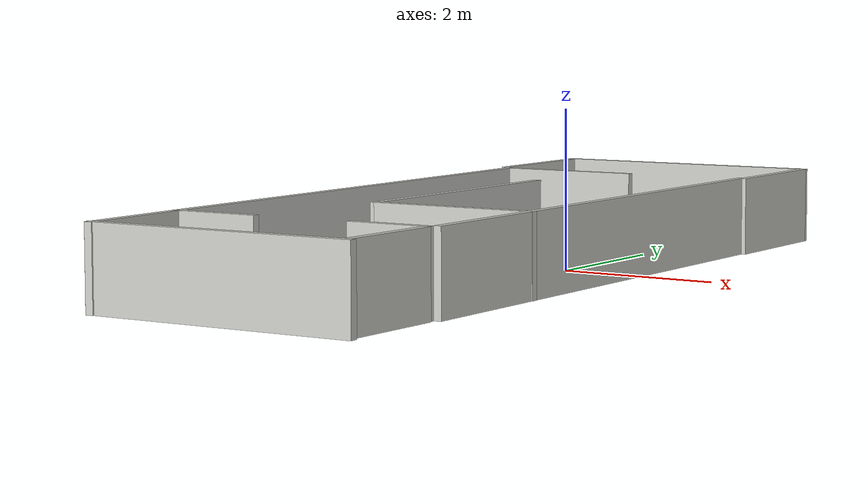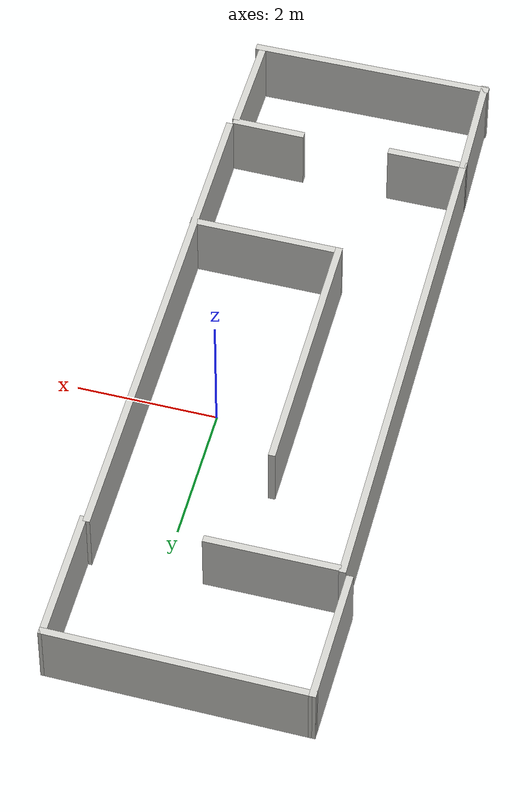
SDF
<?xml version='1.0'?>
<sdf version='1.6'>
  <model name='Final_Maze'>
    <pose frame=''>-0.7665 -0.648598 0 0 -0 0</pose>
    <link name='Wall_11'>
      <collision name='Wall_11_Collision'>
        <geometry>
          <box>
            <size>1.962 0.1 1</size>
          </box>
        </geometry>
        <pose frame=''>0 0 0.5 0 -0 0</pose>
      </collision>
      <visual name='Wall_11_Visual'>
        <pose frame=''>0 0 0.5 0 -0 0</pose>
        <geometry>
          <box>
            <size>1.962 0.1 1</size>
          </box>
        </geometry>
        <material>
          <script>
            <uri>file://media/materials/scripts/gazebo.material</uri>
            <name>Gazebo/CeilingTiled</name>
          </script>
          <ambient>1 0.764706 0.305882 1</ambient>
        </material>
        <meta>
          <layer>0</layer>
        </meta>
      </visual>
      <pose frame=''>-1.8345 4.3806 0 0 -0 -1.5708</pose>
    </link>
    <link name='Wall_15'>
      <collision name='Wall_15_Collision'>
        <geometry>
          <box>
            <size>1.89003 0.1 1</size>
          </box>
        </geometry>
        <pose frame=''>0 0 0.5 0 -0 0</pose>
      </collision>
      <visual name='Wall_15_Visual'>
        <pose frame=''>0 0 0.5 0 -0 0</pose>
        <geometry>
          <box>
            <size>1.89003 0.1 1</size>
          </box>
        </geometry>
        <material>
          <script>
            <uri>file://media/materials/scripts/gazebo.material</uri>
            <name>Gazebo/CeilingTiled</name>
          </script>
          <ambient>1 0.764706 0.305882 1</ambient>
        </material>
        <meta>
          <layer>0</layer>
        </meta>
      </visual>
      <pose frame=''>-0.7415 3.3156 0 0 -0 0.005587</pose>
    </link>
    <link name='Wall_17'>
      <collision name='Wall_17_Collision'>
        <geometry>
          <box>
            <size>1.95 0.1 1</size>
          </box>
        </geometry>
        <pose frame=''>0 0 0.5 0 -0 0</pose>
      </collision>
      <visual name='Wall_17_Visual'>
        <pose frame=''>0 0 0.5 0 -0 0</pose>
        <geometry>
          <box>
            <size>1.95 0.1 1</size>
          </box>
        </geometry>
        <material>
          <script>
            <uri>file://media/materials/scripts/gazebo.material</uri>
            <name>Gazebo/CeilingTiled</name>
          </script>
          <ambient>1 0.764706 0.305882 1</ambient>
        </material>
        <meta>
          <layer>0</layer>
        </meta>
      </visual>
      <pose frame=''>1.8345 4.3636 0 0 -0 -1.5708</pose>
    </link>
    <link name='Wall_25'>
      <collision name='Wall_25_Collision'>
        <geometry>
          <box>
            <size>3.44141 0.1 1</size>
          </box>
        </geometry>
        <pose frame=''>0 0 0.5 0 -0 0</pose>
      </collision>
      <visual name='Wall_25_Visual'>
        <pose frame=''>0 0 0.5 0 -0 0</pose>
        <geometry>
          <box>
            <size>3.44141 0.1 1</size>
          </box>
        </geometry>
        <material>
          <script>
            <uri>file://media/materials/scripts/gazebo.material</uri>
            <name>Gazebo/CeilingTiled</name>
          </script>
          <ambient>1 0.764706 0.305882 1</ambient>
        </material>
        <meta>
          <layer>0</layer>
        </meta>
      </visual>
      <pose frame=''>0.078 -5.2664 0 0 -0 0.015563</pose>
    </link>
    <link name='Wall_30'>
      <collision name='Wall_30_Collision'>
        <geometry>
          <box>
            <size>1.39512 0.1 1</size>
          </box>
        </geometry>
        <pose frame=''>0 0 0.5 0 -0 0</pose>
      </collision>
      <visual name='Wall_30_Visual'>
        <pose frame=''>0 0 0.5 0 -0 0</pose>
        <geometry>
          <box>
            <size>1.39512 0.1 1</size>
          </box>
        </geometry>
        <material>
          <script>
            <uri>file://media/materials/scripts/gazebo.material</uri>
            <name>Gazebo/CeilingTiled</name>
          </script>
          <ambient>1 0.764706 0.305882 1</ambient>
        </material>
        <meta>
          <layer>0</layer>
        </meta>
      </visual>
      <pose frame=''>1.7045 -4.5229 0 0 -0 1.5569</pose>
    </link>
    <link name='Wall_32'>
      <collision name='Wall_32_Collision'>
        <geometry>
          <box>
            <size>1.044 0.1 1</size>
          </box>
        </geometry>
        <pose frame=''>0 0 0.5 0 -0 0</pose>
      </collision>
      <visual name='Wall_32_Visual'>
        <pose frame=''>0 0 0.5 0 -0 0</pose>
        <geometry>
          <box>
            <size>1.044 0.1 1</size>
          </box>
        </geometry>
        <material>
          <script>
            <uri>file://media/materials/scripts/gazebo.material</uri>
            <name>Gazebo/CeilingTiled</name>
          </script>
          <ambient>1 0.764706 0.305882 1</ambient>
        </material>
        <meta>
          <layer>0</layer>
        </meta>
      </visual>
      <pose frame=''>1.2235 -3.7984 0 0 -0 3.14159</pose>
    </link>
    <link name='Wall_34'>
      <collision name='Wall_34_Collision'>
        <geometry>
          <box>
            <size>1.14106 0.1 1</size>
          </box>
        </geometry>
        <pose frame=''>0 0 0.5 0 -0 0</pose>
      </collision>
      <visual name='Wall_34_Visual'>
        <pose frame=''>0 0 0.5 0 -0 0</pose>
        <geometry>
          <box>
            <size>1.14106 0.1 1</size>
          </box>
        </geometry>
        <material>
          <script>
            <uri>file://media/materials/scripts/gazebo.material</uri>
            <name>Gazebo/CeilingTiled</name>
          </script>
          <ambient>1 0.764706 0.305882 1</ambient>
        </material>
        <meta>
          <layer>0</layer>
        </meta>
      </visual>
      <pose frame=''>-1.1 -3.8379 0 0 -0 0.010566</pose>
    </link>
    <link name='Wall_37'>
      <collision name='Wall_37_Collision'>
        <geometry>
          <box>
            <size>1.56769 0.1 1</size>
          </box>
        </geometry>
        <pose frame=''>0 0 0.5 0 -0 0</pose>
      </collision>
      <visual name='Wall_37_Visual'>
        <pose frame=''>0 0 0.5 0 -0 0</pose>
        <geometry>
          <box>
            <size>1.56769 0.1 1</size>
          </box>
        </geometry>
        <material>
          <script>
            <uri>file://media/materials/scripts/gazebo.material</uri>
            <name>Gazebo/CeilingTiled</name>
          </script>
          <ambient>1 0.764706 0.305882 1</ambient>
        </material>
        <meta>
          <layer>0</layer>
        </meta>
      </visual>
      <pose frame=''>-1.598 -4.5769 0 0 -0 -1.54013</pose>
    </link>
    <link name='Wall_42'>
      <collision name='Wall_42_Collision'>
        <geometry>
          <box>
            <size>7.26468 0.1 1</size>
          </box>
        </geometry>
        <pose frame=''>0 0 0.5 0 -0 0</pose>
      </collision>
      <visual name='Wall_42_Visual'>
        <pose frame=''>0 0 0.5 0 -0 0</pose>
        <geometry>
          <box>
            <size>7.26468 0.1 1</size>
          </box>
        </geometry>
        <material>
          <script>
            <uri>file://media/materials/scripts/gazebo.material</uri>
            <name>Gazebo/CeilingTiled</name>
          </script>
          <ambient>1 0.764706 0.305882 1</ambient>
        </material>
        <meta>
          <layer>0</layer>
        </meta>
      </visual>
      <pose frame=''>-1.67 -0.261402 0 0 -0 1.58462</pose>
    </link>
    <link name='Wall_44'>
      <collision name='Wall_44_Collision'>
        <geometry>
          <box>
            <size>7.2 0.1 1</size>
          </box>
        </geometry>
        <pose frame=''>0 0 0.5 0 -0 0</pose>
      </collision>
      <visual name='Wall_44_Visual'>
        <pose frame=''>0 0 0.5 0 -0 0</pose>
        <geometry>
          <box>
            <size>7.2 0.1 1</size>
          </box>
        </geometry>
        <material>
          <script>
            <uri>file://media/materials/scripts/gazebo.material</uri>
            <name>Gazebo/CeilingTiled</name>
          </script>
          <ambient>1 0.764706 0.305882 1</ambient>
        </material>
        <meta>
          <layer>0</layer>
        </meta>
      </visual>
      <pose frame=''>1.7805 -0.137402 0 0 -0 1.5708</pose>
    </link>
    <link name='Wall_46'>
      <collision name='Wall_46_Collision'>
        <geometry>
          <box>
            <size>2.19102 0.1 1</size>
          </box>
        </geometry>
        <pose frame=''>0 0 0.5 0 -0 0</pose>
      </collision>
      <visual name='Wall_46_Visual'>
        <pose frame=''>0 0 0.5 0 -0 0</pose>
        <geometry>
          <box>
            <size>2.19102 0.1 1</size>
          </box>
        </geometry>
        <material>
          <script>
            <uri>file://media/materials/scripts/gazebo.material</uri>
            <name>Gazebo/CeilingTiled</name>
          </script>
          <ambient>1 0.764706 0.305882 1</ambient>
        </material>
        <meta>
          <layer>0</layer>
        </meta>
      </visual>
      <pose frame=''>0.743 -1.8819 0 0 -0 0.004304</pose>
    </link>
    <link name='Wall_48'>
      <collision name='Wall_48_Collision'>
        <geometry>
          <box>
            <size>3.70906 0.1 1</size>
          </box>
        </geometry>
        <pose frame=''>0 0 0.5 0 -0 0</pose>
      </collision>
      <visual name='Wall_48_Visual'>
        <pose frame=''>0 0 0.5 0 -0 0</pose>
        <geometry>
          <box>
            <size>3.70906 0.1 1</size>
          </box>
        </geometry>
        <material>
          <script>
            <uri>file://media/materials/scripts/gazebo.material</uri>
            <name>Gazebo/CeilingTiled</name>
          </script>
          <ambient>1 0.764706 0.305882 1</ambient>
        </material>
        <meta>
          <layer>0</layer>
        </meta>
      </visual>
      <pose frame=''>-0.3125 -0.081902 0 0 -0 1.57634</pose>
    </link>
    <link name='Wall_9'>
      <collision name='Wall_9_Collision'>
        <geometry>
          <box>
            <size>3.76907 0.1 1</size>
          </box>
        </geometry>
        <pose frame=''>0 0 0.5 0 -0 0</pose>
      </collision>
      <visual name='Wall_9_Visual'>
        <pose frame=''>0 0 0.5 0 -0 0</pose>
        <geometry>
          <box>
            <size>3.76907 0.1 1</size>
          </box>
        </geometry>
        <material>
          <script>
            <uri>file://media/materials/scripts/gazebo.material</uri>
            <name>Gazebo/CeilingTiled</name>
          </script>
          <ambient>1 0.764706 0.305882 1</ambient>
        </material>
        <meta>
          <layer>0</layer>
        </meta>
      </visual>
      <pose frame=''>0 5.3001 0 0 -0 -0.006269</pose>
    </link>
    <static>1</static>
  </model>
</sdf>
